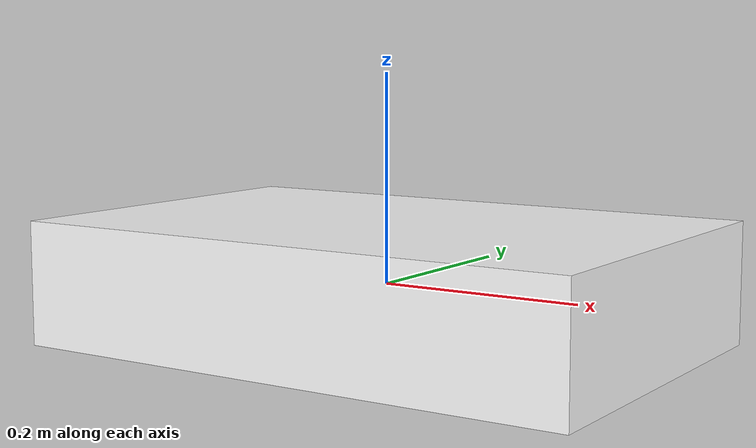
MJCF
<mujoco>
  <compiler angle="radian" assetdir="assets" autolimits="true"/>

  <asset>

    <!-- Textures -->
    <texture type="2d" colorspace="sRGB" name="carton_06_UV" file="carton_06_UV.png"/>

    <!-- Materials -->
    <material name="MI_carton_06" rgba="1 1 1 1" reflectance="0.5" metallic="0.0" roughness="0.5">
      <layer texture="carton_06_UV" role="rgb"/>
    </material>

    <!-- Visual meshes -->
    <mesh class="visual" name="V_carton_06" file="V_carton_06.obj"/>

  </asset>

  <default>
      <default class="visual">
        <geom type="mesh" contype="0" conaffinity="0" group="2" density="0"/>
      </default>
  </default>

  <worldbody>
    <body name="B_carton_06" pos="0.0 0.0 0.0" quat="1.0 0.0 0.0 0.0">
      <geom class="visual" mesh="V_carton_06" pos="0.0 0.0 0.0" quat="1.0 0.0 0.0 0.0" material="MI_carton_06"/>
    </body>
  </worldbody>

</mujoco>
